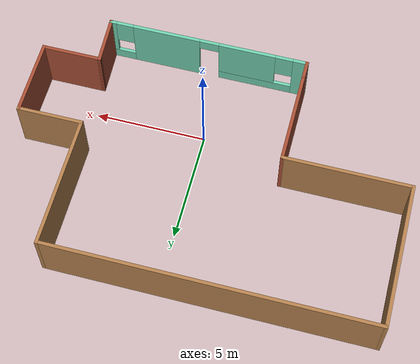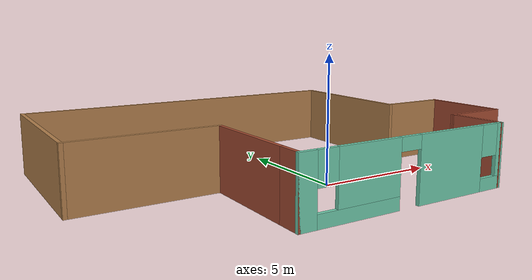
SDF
<?xml version='1.0'?>
<sdf version='1.6'>
  <model name='myprojectbuilding'>
    <pose frame=''>-0.82 2.09826 0 0 -0 0</pose>
    <link name='Wall_0'>
      <pose frame=''>1.55 -5.64826 0 0 -0 0</pose>
      <visual name='Wall_0_Visual_0'>
        <pose frame=''>-4.2725 0 1.25 0 -0 0</pose>
        <geometry>
          <box>
            <size>0.705 0.15 2.5</size>
          </box>
        </geometry>
        <material>
          <script>
            <uri>file://media/materials/scripts/gazebo.material</uri>
            <name>Gazebo/Grey</name>
          </script>
          <ambient>0.435294 0.796078 0.67451 1</ambient>
        </material>
        <meta>
          <layer>0</layer>
        </meta>
      </visual>
      <collision name='Wall_0_Collision_0'>
        <geometry>
          <box>
            <size>0.705 0.15 2.5</size>
          </box>
        </geometry>
        <pose frame=''>-4.2725 0 1.25 0 -0 0</pose>
      </collision>
      <visual name='Wall_0_Visual_1'>
        <pose frame=''>1.935 0 1.25 0 -0 0</pose>
        <geometry>
          <box>
            <size>3.11 0.15 2.5</size>
          </box>
        </geometry>
        <material>
          <script>
            <uri>file://media/materials/scripts/gazebo.material</uri>
            <name>Gazebo/Grey</name>
          </script>
          <ambient>0.435294 0.796078 0.67451 1</ambient>
        </material>
        <meta>
          <layer>0</layer>
        </meta>
      </visual>
      <collision name='Wall_0_Collision_1'>
        <geometry>
          <box>
            <size>3.11 0.15 2.5</size>
          </box>
        </geometry>
        <pose frame=''>1.935 0 1.25 0 -0 0</pose>
      </collision>
      <visual name='Wall_0_Visual_2'>
        <pose frame=''>-2.22 0 0.25 0 -0 0</pose>
        <geometry>
          <box>
            <size>3.4 0.15 0.5</size>
          </box>
        </geometry>
        <material>
          <script>
            <uri>file://media/materials/scripts/gazebo.material</uri>
            <name>Gazebo/Grey</name>
          </script>
          <ambient>0.435294 0.796078 0.67451 1</ambient>
        </material>
        <meta>
          <layer>0</layer>
        </meta>
      </visual>
      <collision name='Wall_0_Collision_2'>
        <geometry>
          <box>
            <size>3.4 0.15 0.5</size>
          </box>
        </geometry>
        <pose frame=''>-2.22 0 0.25 0 -0 0</pose>
      </collision>
      <visual name='Wall_0_Visual_3'>
        <pose frame=''>4.0575 0 0.25 0 -0 0</pose>
        <geometry>
          <box>
            <size>1.135 0.15 0.5</size>
          </box>
        </geometry>
        <material>
          <script>
            <uri>file://media/materials/scripts/gazebo.material</uri>
            <name>Gazebo/Grey</name>
          </script>
          <ambient>0.435294 0.796078 0.67451 1</ambient>
        </material>
        <meta>
          <layer>0</layer>
        </meta>
      </visual>
      <collision name='Wall_0_Collision_3'>
        <geometry>
          <box>
            <size>1.135 0.15 0.5</size>
          </box>
        </geometry>
        <pose frame=''>4.0575 0 0.25 0 -0 0</pose>
      </collision>
      <visual name='Wall_0_Visual_4'>
        <pose frame=''>-1.82 0 1.5 0 -0 0</pose>
        <geometry>
          <box>
            <size>2.6 0.15 2</size>
          </box>
        </geometry>
        <material>
          <script>
            <uri>file://media/materials/scripts/gazebo.material</uri>
            <name>Gazebo/Grey</name>
          </script>
          <ambient>0.435294 0.796078 0.67451 1</ambient>
        </material>
        <meta>
          <layer>0</layer>
        </meta>
      </visual>
      <collision name='Wall_0_Collision_4'>
        <geometry>
          <box>
            <size>2.6 0.15 2</size>
          </box>
        </geometry>
        <pose frame=''>-1.82 0 1.5 0 -0 0</pose>
      </collision>
      <visual name='Wall_0_Visual_5'>
        <pose frame=''>-1.82 0 1.5 0 -0 0</pose>
        <geometry>
          <box>
            <size>2.6 0.15 2</size>
          </box>
        </geometry>
        <material>
          <script>
            <uri>file://media/materials/scripts/gazebo.material</uri>
            <name>Gazebo/Grey</name>
          </script>
          <ambient>0.435294 0.796078 0.67451 1</ambient>
        </material>
        <meta>
          <layer>0</layer>
        </meta>
      </visual>
      <collision name='Wall_0_Collision_5'>
        <geometry>
          <box>
            <size>2.6 0.15 2</size>
          </box>
        </geometry>
        <pose frame=''>-1.82 0 1.5 0 -0 0</pose>
      </collision>
      <visual name='Wall_0_Visual_6'>
        <pose frame=''>4.4575 0 1.5 0 -0 0</pose>
        <geometry>
          <box>
            <size>0.335 0.15 2</size>
          </box>
        </geometry>
        <material>
          <script>
            <uri>file://media/materials/scripts/gazebo.material</uri>
            <name>Gazebo/Grey</name>
          </script>
          <ambient>0.435294 0.796078 0.67451 1</ambient>
        </material>
        <meta>
          <layer>0</layer>
        </meta>
      </visual>
      <collision name='Wall_0_Collision_6'>
        <geometry>
          <box>
            <size>0.335 0.15 2</size>
          </box>
        </geometry>
        <pose frame=''>4.4575 0 1.5 0 -0 0</pose>
      </collision>
      <visual name='Wall_0_Visual_7'>
        <pose frame=''>-3.52 0 1.9 0 -0 0</pose>
        <geometry>
          <box>
            <size>0.8 0.15 1.2</size>
          </box>
        </geometry>
        <material>
          <script>
            <uri>file://media/materials/scripts/gazebo.material</uri>
            <name>Gazebo/Grey</name>
          </script>
          <ambient>0.435294 0.796078 0.67451 1</ambient>
        </material>
        <meta>
          <layer>0</layer>
        </meta>
      </visual>
      <collision name='Wall_0_Collision_7'>
        <geometry>
          <box>
            <size>0.8 0.15 1.2</size>
          </box>
        </geometry>
        <pose frame=''>-3.52 0 1.9 0 -0 0</pose>
      </collision>
      <visual name='Wall_0_Visual_8'>
        <pose frame=''>3.89 0 1.9 0 -0 0</pose>
        <geometry>
          <box>
            <size>0.8 0.15 1.2</size>
          </box>
        </geometry>
        <material>
          <script>
            <uri>file://media/materials/scripts/gazebo.material</uri>
            <name>Gazebo/Grey</name>
          </script>
          <ambient>0.435294 0.796078 0.67451 1</ambient>
        </material>
        <meta>
          <layer>0</layer>
        </meta>
      </visual>
      <collision name='Wall_0_Collision_8'>
        <geometry>
          <box>
            <size>0.8 0.15 1.2</size>
          </box>
        </geometry>
        <pose frame=''>3.89 0 1.9 0 -0 0</pose>
      </collision>
      <visual name='Wall_0_Visual_9'>
        <pose frame=''>-0.07 0 2.25 0 -0 0</pose>
        <geometry>
          <box>
            <size>0.9 0.15 0.5</size>
          </box>
        </geometry>
        <material>
          <script>
            <uri>file://media/materials/scripts/gazebo.material</uri>
            <name>Gazebo/Grey</name>
          </script>
          <ambient>0.435294 0.796078 0.67451 1</ambient>
        </material>
        <meta>
          <layer>0</layer>
        </meta>
      </visual>
      <collision name='Wall_0_Collision_9'>
        <geometry>
          <box>
            <size>0.9 0.15 0.5</size>
          </box>
        </geometry>
        <pose frame=''>-0.07 0 2.25 0 -0 0</pose>
      </collision>
      <visual name='Wall_0_Visual_10'>
        <pose frame=''>-0.07 0 2.25 0 -0 0</pose>
        <geometry>
          <box>
            <size>0.9 0.15 0.5</size>
          </box>
        </geometry>
        <material>
          <script>
            <uri>file://media/materials/scripts/gazebo.material</uri>
            <name>Gazebo/Grey</name>
          </script>
          <ambient>0.435294 0.796078 0.67451 1</ambient>
        </material>
        <meta>
          <layer>0</layer>
        </meta>
      </visual>
      <collision name='Wall_0_Collision_10'>
        <geometry>
          <box>
            <size>0.9 0.15 0.5</size>
          </box>
        </geometry>
        <pose frame=''>-0.07 0 2.25 0 -0 0</pose>
      </collision>
    </link>
    <link name='Wall_10'>
      <collision name='Wall_10_Collision'>
        <geometry>
          <box>
            <size>3.5 0.15 2.5</size>
          </box>
        </geometry>
        <pose frame=''>0 0 1.25 0 -0 0</pose>
      </collision>
      <visual name='Wall_10_Visual'>
        <pose frame=''>0 0 1.25 0 -0 0</pose>
        <geometry>
          <box>
            <size>3.5 0.15 2.5</size>
          </box>
        </geometry>
        <material>
          <script>
            <uri>file://media/materials/scripts/gazebo.material</uri>
            <name>Gazebo/Bricks</name>
          </script>
          <ambient>1 1 1 1</ambient>
        </material>
        <meta>
          <layer>0</layer>
        </meta>
      </visual>
      <pose frame=''>8.6 -1.87326 0 0 -0 -1.5708</pose>
    </link>
    <link name='Wall_11'>
      <collision name='Wall_11_Collision'>
        <geometry>
          <box>
            <size>2.75 0.15 2.5</size>
          </box>
        </geometry>
        <pose frame=''>0 0 1.25 0 -0 0</pose>
      </collision>
      <visual name='Wall_11_Visual'>
        <pose frame=''>0 0 1.25 0 -0 0</pose>
        <geometry>
          <box>
            <size>2.75 0.15 2.5</size>
          </box>
        </geometry>
        <material>
          <script>
            <uri>file://media/materials/scripts/gazebo.material</uri>
            <name>Gazebo/Bricks</name>
          </script>
          <ambient>1 1 1 1</ambient>
        </material>
        <meta>
          <layer>0</layer>
        </meta>
      </visual>
      <pose frame=''>7.3 -3.54826 0 0 -0 3.14159</pose>
    </link>
    <link name='Wall_12'>
      <collision name='Wall_12_Collision'>
        <geometry>
          <box>
            <size>2.25238 0.15 2.5</size>
          </box>
        </geometry>
        <pose frame=''>0 0 1.25 0 -0 0</pose>
      </collision>
      <visual name='Wall_12_Visual'>
        <pose frame=''>0 0 1.25 0 -0 0</pose>
        <geometry>
          <box>
            <size>2.25238 0.15 2.5</size>
          </box>
        </geometry>
        <material>
          <script>
            <uri>file://media/materials/scripts/gazebo.material</uri>
            <name>Gazebo/Bricks</name>
          </script>
          <ambient>1 1 1 1</ambient>
        </material>
        <meta>
          <layer>0</layer>
        </meta>
      </visual>
      <pose frame=''>6.05 -4.59826 0 0 -0 -1.52321</pose>
    </link>
    <link name='Wall_3'>
      <collision name='Wall_3_Collision'>
        <geometry>
          <box>
            <size>1 0.15 2.5</size>
          </box>
        </geometry>
        <pose frame=''>0 0 1.25 0 -0 0</pose>
      </collision>
      <visual name='Wall_3_Visual'>
        <pose frame=''>0 0 1.25 0 -0 0</pose>
        <geometry>
          <box>
            <size>1 0.15 2.5</size>
          </box>
        </geometry>
        <material>
          <script>
            <uri>file://media/materials/scripts/gazebo.material</uri>
            <name>Gazebo/Bricks</name>
          </script>
          <ambient>1 1 1 1</ambient>
        </material>
        <meta>
          <layer>0</layer>
        </meta>
      </visual>
      <pose frame=''>-3 -5.22326 0 0 -0 1.5708</pose>
    </link>
    <link name='Wall_4'>
      <collision name='Wall_4_Collision'>
        <geometry>
          <box>
            <size>4.25 0.15 2.5</size>
          </box>
        </geometry>
        <pose frame=''>0 0 1.25 0 -0 0</pose>
      </collision>
      <visual name='Wall_4_Visual'>
        <pose frame=''>0 0 1.25 0 -0 0</pose>
        <geometry>
          <box>
            <size>4.25 0.15 2.5</size>
          </box>
        </geometry>
        <material>
          <script>
            <uri>file://media/materials/scripts/gazebo.material</uri>
            <name>Gazebo/Bricks</name>
          </script>
          <ambient>1 1 1 1</ambient>
        </material>
        <meta>
          <layer>0</layer>
        </meta>
      </visual>
      <pose frame=''>-3 -2.74826 0 0 -0 1.5708</pose>
    </link>
    <link name='Wall_5'>
      <collision name='Wall_5_Collision'>
        <geometry>
          <box>
            <size>5.75 0.15 2.5</size>
          </box>
        </geometry>
        <pose frame=''>0 0 1.25 0 -0 0</pose>
      </collision>
      <visual name='Wall_5_Visual'>
        <pose frame=''>0 0 1.25 0 -0 0</pose>
        <geometry>
          <box>
            <size>5.75 0.15 2.5</size>
          </box>
        </geometry>
        <material>
          <script>
            <uri>file://media/materials/scripts/gazebo.material</uri>
            <name>Gazebo/Wood</name>
          </script>
          <ambient>1 1 1 1</ambient>
        </material>
        <meta>
          <layer>0</layer>
        </meta>
      </visual>
      <pose frame=''>-5.8 -0.698259 0 0 -0 3.14159</pose>
    </link>
    <link name='Wall_6'>
      <collision name='Wall_6_Collision'>
        <geometry>
          <box>
            <size>6.5 0.15 2.5</size>
          </box>
        </geometry>
        <pose frame=''>0 0 1.25 0 -0 0</pose>
      </collision>
      <visual name='Wall_6_Visual'>
        <pose frame=''>0 0 1.25 0 -0 0</pose>
        <geometry>
          <box>
            <size>6.5 0.15 2.5</size>
          </box>
        </geometry>
        <material>
          <script>
            <uri>file://media/materials/scripts/gazebo.material</uri>
            <name>Gazebo/Wood</name>
          </script>
          <ambient>1 1 1 1</ambient>
        </material>
        <meta>
          <layer>0</layer>
        </meta>
      </visual>
      <pose frame=''>-8.6 2.47674 0 0 -0 1.5708</pose>
    </link>
    <link name='Wall_7'>
      <collision name='Wall_7_Collision'>
        <geometry>
          <box>
            <size>14.5 0.15 2.5</size>
          </box>
        </geometry>
        <pose frame=''>0 0 1.25 0 -0 0</pose>
      </collision>
      <visual name='Wall_7_Visual'>
        <pose frame=''>0 0 1.25 0 -0 0</pose>
        <geometry>
          <box>
            <size>14.5 0.15 2.5</size>
          </box>
        </geometry>
        <material>
          <script>
            <uri>file://media/materials/scripts/gazebo.material</uri>
            <name>Gazebo/Wood</name>
          </script>
          <ambient>1 1 1 1</ambient>
        </material>
        <meta>
          <layer>0</layer>
        </meta>
      </visual>
      <pose frame=''>-1.425 5.65174 0 0 -0 0</pose>
    </link>
    <link name='Wall_8'>
      <collision name='Wall_8_Collision'>
        <geometry>
          <box>
            <size>6 0.15 2.5</size>
          </box>
        </geometry>
        <pose frame=''>0 0 1.25 0 -0 0</pose>
      </collision>
      <visual name='Wall_8_Visual'>
        <pose frame=''>0 0 1.25 0 -0 0</pose>
        <geometry>
          <box>
            <size>6 0.15 2.5</size>
          </box>
        </geometry>
        <material>
          <script>
            <uri>file://media/materials/scripts/gazebo.material</uri>
            <name>Gazebo/Wood</name>
          </script>
          <ambient>1 1 1 1</ambient>
        </material>
        <meta>
          <layer>0</layer>
        </meta>
      </visual>
      <pose frame=''>5.75 2.72674 0 0 -0 -1.5708</pose>
    </link>
    <link name='Wall_9'>
      <collision name='Wall_9_Collision'>
        <geometry>
          <box>
            <size>3 0.15 2.5</size>
          </box>
        </geometry>
        <pose frame=''>0 0 1.25 0 -0 0</pose>
      </collision>
      <visual name='Wall_9_Visual'>
        <pose frame=''>0 0 1.25 0 -0 0</pose>
        <geometry>
          <box>
            <size>3 0.15 2.5</size>
          </box>
        </geometry>
        <material>
          <script>
            <uri>file://media/materials/scripts/gazebo.material</uri>
            <name>Gazebo/Wood</name>
          </script>
          <ambient>1 1 1 1</ambient>
        </material>
        <meta>
          <layer>0</layer>
        </meta>
      </visual>
      <pose frame=''>7.175 -0.198259 0 0 -0 0</pose>
    </link>
    <static>1</static>
  </model>
</sdf>
